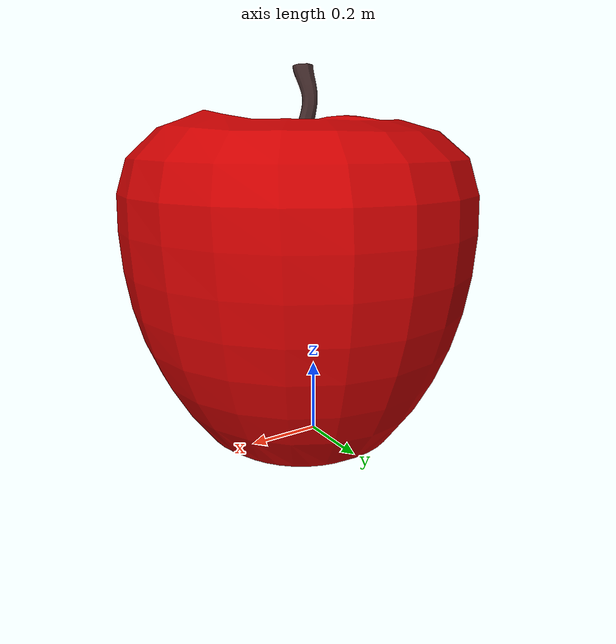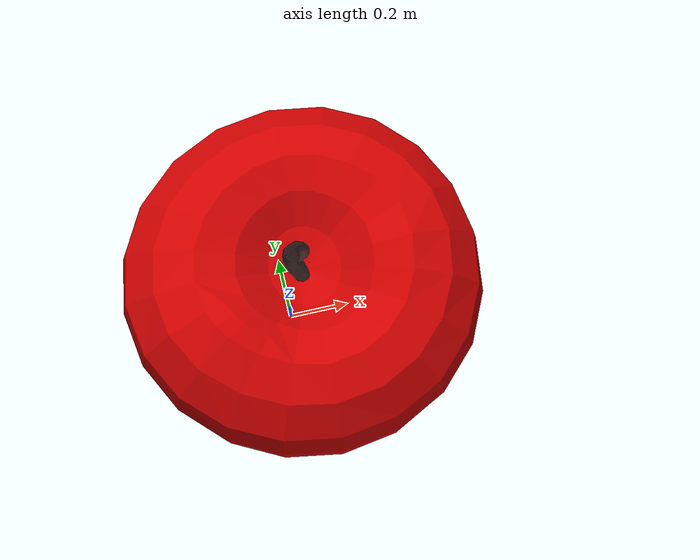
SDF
<?xml version="1.0"?>
<sdf version="1.4">
<model name="apple">
   <link name="applebody">
      <pose> 0 0 0 0 0 0 </pose>
      <collision name="c1">
        <pose> 0 0 0.5 0 0 0 </pose>
        <geometry>
            <sphere> <radius>0.5</radius> </sphere>
        </geometry>
        <surface>
           <friction>
              <ode>
                <mu>0.0</mu>
                <mu2>0.0</mu2>
              </ode>
            </friction>
         </surface>
      </collision>

      <visual name="v1" >
         <pose> 0 0 0 0 0 0 </pose>
         <geometry>
            <mesh>
               <uri> model://apple/meshes/apple.dae </uri>
               <scale> 10 10 10 </scale>
            </mesh>
         </geometry>
     </visual>
  </link>

  <plugin name="apple_model_plugin" filename="libapple_model.dylib" />

</model>
</sdf>
